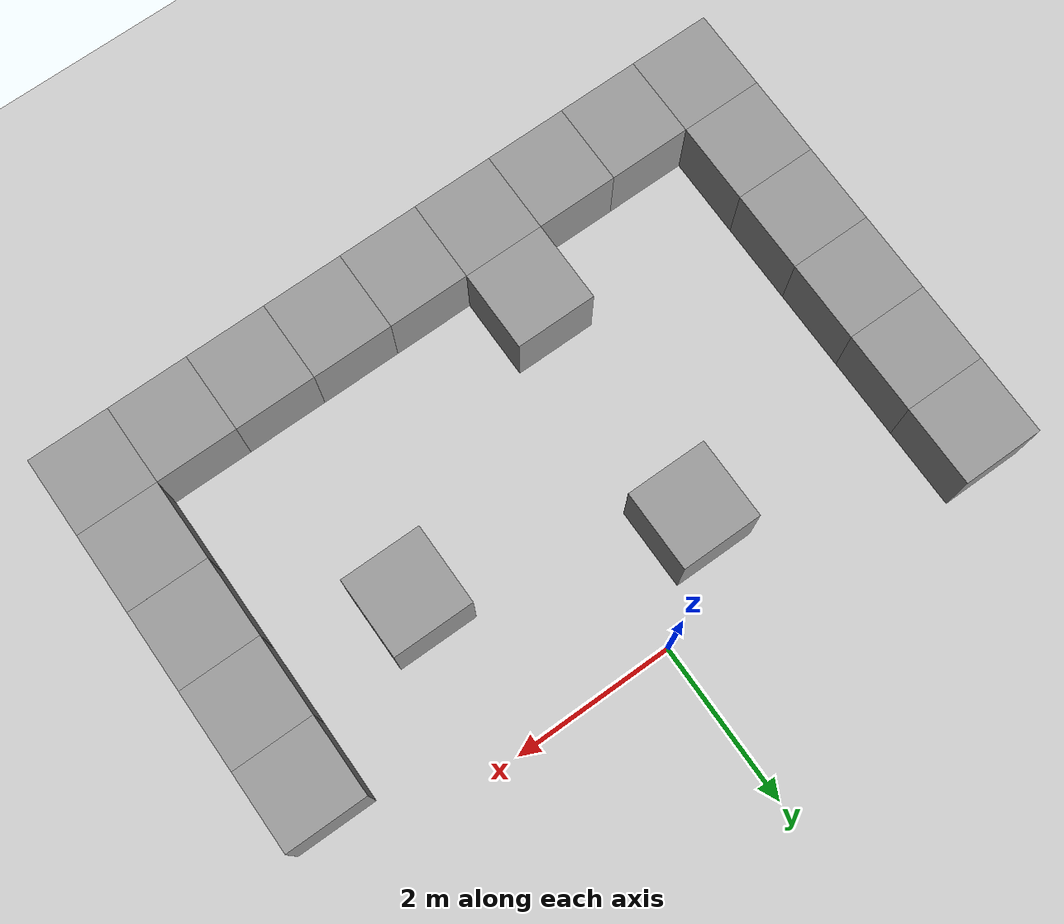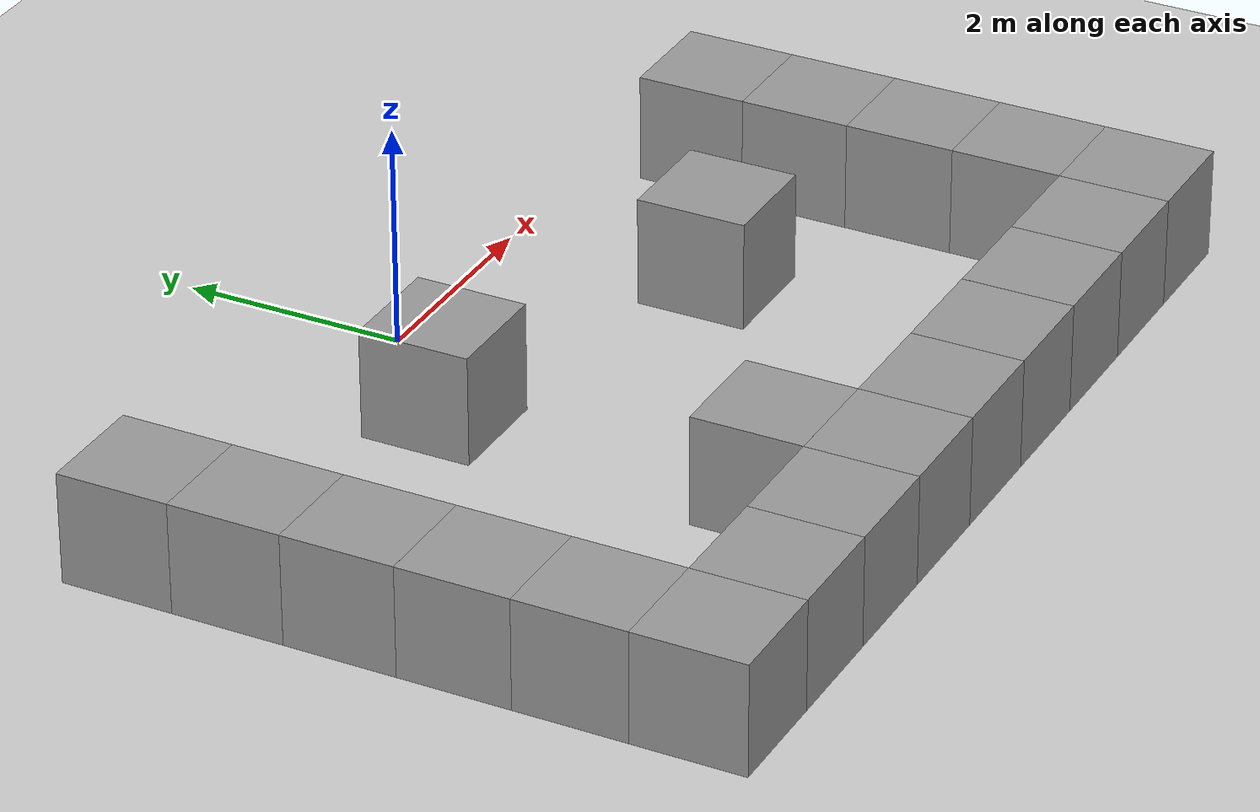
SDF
<sdf version="1.6">
 <world name="default">
  <model name="ground_plane">
   <static>1</static>
   <link name="link">
    <collision name="collision">
     <geometry><plane><normal>0 0 1</normal><size>100 100</size></plane></geometry>
     <surface>
      <contact><collide_bitmask>65535</collide_bitmask></contact>
      <friction><ode><mu>100</mu><mu2>50</mu2></ode></friction>
     </surface>
    </collision>
    <visual name="visual">
     <cast_shadows>0</cast_shadows>
     <geometry><plane><normal>0 0 1</normal><size>100 100</size></plane></geometry>
     <material>
      <script><uri>file://media/materials/scripts/gazebo.material</uri><name>Gazebo/Grey</name></script>
     </material>
    </visual>
   </link>
  </model>
  <model name="unit_box">
   <pose>-1 -0.999994 0.499995 -1e-05 -0 -0</pose>
   <link name="link">
    <inertial>
     <mass>1</mass>
     <inertia>
      <ixx>0.166667</ixx>
      <ixy>0</ixy>
      <ixz>0</ixz>
      <iyy>0.166667</iyy>
      <iyz>0</iyz>
      <izz>0.166667</izz>
     </inertia>
    </inertial>
    <collision name="collision"><geometry><box><size>1 1 1</size></box></geometry></collision>
    <visual name="visual">
     <geometry><box><size>1 1 1</size></box></geometry>
     <material>
      <script><name>Gazebo/Grey</name><uri>file://media/materials/scripts/gazebo.material</uri></script>
     </material>
    </visual>
   </link>
  </model>
  <model name="unit_box_2">
   <pose>2 -2 0.499995 0 1e-05 0</pose>
   <link name="link">
    <inertial>
     <mass>1</mass>
     <inertia>
      <ixx>0.166667</ixx>
      <ixy>0</ixy>
      <ixz>0</ixz>
      <iyy>0.166667</iyy>
      <iyz>0</iyz>
      <izz>0.166667</izz>
     </inertia>
    </inertial>
    <collision name="collision"><geometry><box><size>1 1 1</size></box></geometry></collision>
    <visual name="visual">
     <geometry><box><size>1 1 1</size></box></geometry>
     <material>
      <script><name>Gazebo/Grey</name><uri>file://media/materials/scripts/gazebo.material</uri></script>
     </material>
    </visual>
   </link>
  </model>
  <model name="unit_box_4">
   <pose>-1.00003 -4 0.499995 0 -1e-05 -2.2e-05</pose>
   <link name="link">
    <inertial>
     <mass>1</mass>
     <inertia>
      <ixx>0.166667</ixx>
      <ixy>0</ixy>
      <ixz>0</ixz>
      <iyy>0.166667</iyy>
      <iyz>0</iyz>
      <izz>0.166667</izz>
     </inertia>
    </inertial>
    <collision name="collision"><geometry><box><size>1 1 1</size></box></geometry></collision>
    <visual name="visual">
     <geometry><box><size>1 1 1</size></box></geometry>
     <material>
      <script><name>Gazebo/Grey</name><uri>file://media/materials/scripts/gazebo.material</uri></script>
     </material>
    </visual>
   </link>
  </model>
  <model name="unit_box_5">
   <pose>-4.00001 5e-06 0.499995 -1e-05 -0 -7e-06</pose>
   <link name="link">
    <inertial>
     <mass>1</mass>
     <inertia>
      <ixx>0.166667</ixx>
      <ixy>0</ixy>
      <ixz>0</ixz>
      <iyy>0.166667</iyy>
      <iyz>0</iyz>
      <izz>0.166667</izz>
     </inertia>
    </inertial>
    <collision name="collision"><geometry><box><size>1 1 1</size></box></geometry></collision>
    <visual name="visual">
     <geometry><box><size>1 1 1</size></box></geometry>
     <material>
      <script><name>Gazebo/Grey</name><uri>file://media/materials/scripts/gazebo.material</uri></script>
     </material>
    </visual>
   </link>
  </model>
  <model name="unit_box_17">
   <pose>3.99999 -2 0.5 0 -0 0</pose>
   <link name="link">
    <inertial>
     <mass>1</mass>
     <inertia>
      <ixx>0.166667</ixx>
      <ixy>0</ixy>
      <ixz>0</ixz>
      <iyy>0.166667</iyy>
      <iyz>0</iyz>
      <izz>0.166667</izz>
     </inertia>
    </inertial>
    <collision name="collision"><geometry><box><size>1 1 1</size></box></geometry></collision>
    <visual name="visual">
     <geometry><box><size>1 1 1</size></box></geometry>
     <material>
      <script><name>Gazebo/Grey</name><uri>file://media/materials/scripts/gazebo.material</uri></script>
     </material>
    </visual>
   </link>
  </model>
  <model name="unit_box_18">
   <pose>3.99999 -0.99999 0.499995 -1e-05 -0 2e-06</pose>
   <link name="link">
    <inertial>
     <mass>1</mass>
     <inertia>
      <ixx>0.166667</ixx>
      <ixy>0</ixy>
      <ixz>0</ixz>
      <iyy>0.166667</iyy>
      <iyz>0</iyz>
      <izz>0.166667</izz>
     </inertia>
    </inertial>
    <collision name="collision"><geometry><box><size>1 1 1</size></box></geometry></collision>
    <visual name="visual">
     <geometry><box><size>1 1 1</size></box></geometry>
     <material>
      <script><name>Gazebo/Grey</name><uri>file://media/materials/scripts/gazebo.material</uri></script>
     </material>
    </visual>
   </link>
  </model>
  <model name="unit_box_26">
   <pose>4.00002 -3 0.499995 0 1e-05 -1e-06</pose>
   <link name="link">
    <inertial>
     <mass>1</mass>
     <inertia>
      <ixx>0.166667</ixx>
      <ixy>0</ixy>
      <ixz>0</ixz>
      <iyy>0.166667</iyy>
      <iyz>0</iyz>
      <izz>0.166667</izz>
     </inertia>
    </inertial>
    <collision name="collision"><geometry><box><size>1 1 1</size></box></geometry></collision>
    <visual name="visual">
     <geometry><box><size>1 1 1</size></box></geometry>
     <material>
      <script><name>Gazebo/Grey</name><uri>file://media/materials/scripts/gazebo.material</uri></script>
     </material>
    </visual>
   </link>
  </model>
  <model name="unit_box_27">
   <pose>4.00001 -4.00001 0.499995 0 1e-05 -7e-06</pose>
   <link name="link">
    <inertial>
     <mass>1</mass>
     <inertia>
      <ixx>0.166667</ixx>
      <ixy>0</ixy>
      <ixz>0</ixz>
      <iyy>0.166667</iyy>
      <iyz>0</iyz>
      <izz>0.166667</izz>
     </inertia>
    </inertial>
    <collision name="collision"><geometry><box><size>1 1 1</size></box></geometry></collision>
    <visual name="visual">
     <geometry><box><size>1 1 1</size></box></geometry>
     <material>
      <script><name>Gazebo/Grey</name><uri>file://media/materials/scripts/gazebo.material</uri></script>
     </material>
    </visual>
   </link>
  </model>
  <model name="unit_box_28">
   <pose>4.00001 -5.00002 0.499995 0 1e-05 -7e-06</pose>
   <link name="link">
    <inertial>
     <mass>1</mass>
     <inertia>
      <ixx>0.166667</ixx>
      <ixy>0</ixy>
      <ixz>0</ixz>
      <iyy>0.166667</iyy>
      <iyz>0</iyz>
      <izz>0.166667</izz>
     </inertia>
    </inertial>
    <collision name="collision"><geometry><box><size>1 1 1</size></box></geometry></collision>
    <visual name="visual">
     <geometry><box><size>1 1 1</size></box></geometry>
     <material>
      <script><name>Gazebo/Grey</name><uri>file://media/materials/scripts/gazebo.material</uri></script>
     </material>
    </visual>
   </link>
  </model>
  <model name="unit_box_29">
   <pose>2.99999 -5 0.499995 -0 9e-06 -1.7e-05</pose>
   <link name="link">
    <inertial>
     <mass>1</mass>
     <inertia>
      <ixx>0.166667</ixx>
      <ixy>0</ixy>
      <ixz>0</ixz>
      <iyy>0.166667</iyy>
      <iyz>0</iyz>
      <izz>0.166667</izz>
     </inertia>
    </inertial>
    <collision name="collision"><geometry><box><size>1 1 1</size></box></geometry></collision>
    <visual name="visual">
     <geometry><box><size>1 1 1</size></box></geometry>
     <material>
      <script><name>Gazebo/Grey</name><uri>file://media/materials/scripts/gazebo.material</uri></script>
     </material>
    </visual>
   </link>
  </model>
  <model name="unit_box_30">
   <pose>1.99998 -4.99999 0.499999 0 2e-06 -1.4e-05</pose>
   <link name="link">
    <inertial>
     <mass>1</mass>
     <inertia>
      <ixx>0.166667</ixx>
      <ixy>0</ixy>
      <ixz>0</ixz>
      <iyy>0.166667</iyy>
      <iyz>0</iyz>
      <izz>0.166667</izz>
     </inertia>
    </inertial>
    <collision name="collision"><geometry><box><size>1 1 1</size></box></geometry></collision>
    <visual name="visual">
     <geometry><box><size>1 1 1</size></box></geometry>
     <material>
      <script><name>Gazebo/Grey</name><uri>file://media/materials/scripts/gazebo.material</uri></script>
     </material>
    </visual>
   </link>
  </model>
  <model name="unit_box_31">
   <pose>0.999975 -4.99996 0.5 0 0 -1.9e-05</pose>
   <link name="link">
    <inertial>
     <mass>1</mass>
     <inertia>
      <ixx>0.166667</ixx>
      <ixy>0</ixy>
      <ixz>0</ixz>
      <iyy>0.166667</iyy>
      <iyz>0</iyz>
      <izz>0.166667</izz>
     </inertia>
    </inertial>
    <collision name="collision"><geometry><box><size>1 1 1</size></box></geometry></collision>
    <visual name="visual">
     <geometry><box><size>1 1 1</size></box></geometry>
     <material>
      <script><name>Gazebo/Grey</name><uri>file://media/materials/scripts/gazebo.material</uri></script>
     </material>
    </visual>
   </link>
  </model>
  <model name="unit_box_32">
   <pose>-2.6e-05 -5.00001 0.5 -0 -0 -1.9e-05</pose>
   <link name="link">
    <inertial>
     <mass>1</mass>
     <inertia>
      <ixx>0.166667</ixx>
      <ixy>0</ixy>
      <ixz>0</ixz>
      <iyy>0.166667</iyy>
      <iyz>0</iyz>
      <izz>0.166667</izz>
     </inertia>
    </inertial>
    <collision name="collision"><geometry><box><size>1 1 1</size></box></geometry></collision>
    <visual name="visual">
     <geometry><box><size>1 1 1</size></box></geometry>
     <material>
      <script><name>Gazebo/Grey</name><uri>file://media/materials/scripts/gazebo.material</uri></script>
     </material>
    </visual>
   </link>
  </model>
  <model name="unit_box_33">
   <pose>-1.00003 -5.00004 0.499995 9e-06 -0 -2.1e-05</pose>
   <link name="link">
    <inertial>
     <mass>1</mass>
     <inertia>
      <ixx>0.166667</ixx>
      <ixy>0</ixy>
      <ixz>0</ixz>
      <iyy>0.166667</iyy>
      <iyz>0</iyz>
      <izz>0.166667</izz>
     </inertia>
    </inertial>
    <collision name="collision"><geometry><box><size>1 1 1</size></box></geometry></collision>
    <visual name="visual">
     <geometry><box><size>1 1 1</size></box></geometry>
     <material>
      <script><name>Gazebo/Grey</name><uri>file://media/materials/scripts/gazebo.material</uri></script>
     </material>
    </visual>
   </link>
  </model>
  <model name="unit_box_34">
   <pose>-2.00003 -4.99998 0.499998 1e-06 -4e-06 -2.2e-05</pose>
   <link name="link">
    <inertial>
     <mass>1</mass>
     <inertia>
      <ixx>0.166667</ixx>
      <ixy>0</ixy>
      <ixz>0</ixz>
      <iyy>0.166667</iyy>
      <iyz>0</iyz>
      <izz>0.166667</izz>
     </inertia>
    </inertial>
    <collision name="collision"><geometry><box><size>1 1 1</size></box></geometry></collision>
    <visual name="visual">
     <geometry><box><size>1 1 1</size></box></geometry>
     <material>
      <script><name>Gazebo/Grey</name><uri>file://media/materials/scripts/gazebo.material</uri></script>
     </material>
    </visual>
   </link>
  </model>
  <model name="unit_box_35">
   <pose>-3.00004 -5.00005 0.5 0 0 -6e-06</pose>
   <link name="link">
    <inertial>
     <mass>1</mass>
     <inertia>
      <ixx>0.166667</ixx>
      <ixy>0</ixy>
      <ixz>0</ixz>
      <iyy>0.166667</iyy>
      <iyz>0</iyz>
      <izz>0.166667</izz>
     </inertia>
    </inertial>
    <collision name="collision"><geometry><box><size>1 1 1</size></box></geometry></collision>
    <visual name="visual">
     <geometry><box><size>1 1 1</size></box></geometry>
     <material>
      <script><name>Gazebo/Grey</name><uri>file://media/materials/scripts/gazebo.material</uri></script>
     </material>
    </visual>
   </link>
  </model>
  <model name="unit_box_36">
   <pose>-4.00001 -1 0.499995 0 -1e-05 -1.1e-05</pose>
   <link name="link">
    <inertial>
     <mass>1</mass>
     <inertia>
      <ixx>0.166667</ixx>
      <ixy>0</ixy>
      <ixz>0</ixz>
      <iyy>0.166667</iyy>
      <iyz>0</iyz>
      <izz>0.166667</izz>
     </inertia>
    </inertial>
    <collision name="collision"><geometry><box><size>1 1 1</size></box></geometry></collision>
    <visual name="visual">
     <geometry><box><size>1 1 1</size></box></geometry>
     <material>
      <script><name>Gazebo/Grey</name><uri>file://media/materials/scripts/gazebo.material</uri></script>
     </material>
    </visual>
   </link>
  </model>
  <model name="unit_box_37">
   <pose>-4.00001 -2.00001 0.499995 0 1e-05 -1.6e-05</pose>
   <link name="link">
    <inertial>
     <mass>1</mass>
     <inertia>
      <ixx>0.166667</ixx>
      <ixy>0</ixy>
      <ixz>0</ixz>
      <iyy>0.166667</iyy>
      <iyz>0</iyz>
      <izz>0.166667</izz>
     </inertia>
    </inertial>
    <collision name="collision"><geometry><box><size>1 1 1</size></box></geometry></collision>
    <visual name="visual">
     <geometry><box><size>1 1 1</size></box></geometry>
     <material>
      <script><name>Gazebo/Grey</name><uri>file://media/materials/scripts/gazebo.material</uri></script>
     </material>
    </visual>
   </link>
  </model>
  <model name="unit_box_38">
   <pose>-4.00002 -3.00002 0.5 0 0 -6e-06</pose>
   <link name="link">
    <inertial>
     <mass>1</mass>
     <inertia>
      <ixx>0.166667</ixx>
      <ixy>0</ixy>
      <ixz>0</ixz>
      <iyy>0.166667</iyy>
      <iyz>0</iyz>
      <izz>0.166667</izz>
     </inertia>
    </inertial>
    <collision name="collision"><geometry><box><size>1 1 1</size></box></geometry></collision>
    <visual name="visual">
     <geometry><box><size>1 1 1</size></box></geometry>
     <material>
      <script><name>Gazebo/Grey</name><uri>file://media/materials/scripts/gazebo.material</uri></script>
     </material>
    </visual>
   </link>
  </model>
  <model name="unit_box_39">
   <pose>-4.00003 -4.00003 0.5 -0 -0 -3e-06</pose>
   <link name="link">
    <inertial>
     <mass>1</mass>
     <inertia>
      <ixx>0.166667</ixx>
      <ixy>0</ixy>
      <ixz>0</ixz>
      <iyy>0.166667</iyy>
      <iyz>0</iyz>
      <izz>0.166667</izz>
     </inertia>
    </inertial>
    <collision name="collision"><geometry><box><size>1 1 1</size></box></geometry></collision>
    <visual name="visual">
     <geometry><box><size>1 1 1</size></box></geometry>
     <material>
      <script><name>Gazebo/Grey</name><uri>file://media/materials/scripts/gazebo.material</uri></script>
     </material>
    </visual>
   </link>
  </model>
  <model name="unit_box_40">
   <pose>-4.00004 -5.00003 0.499998 -4e-06 -0 -5e-06</pose>
   <link name="link">
    <inertial>
     <mass>1</mass>
     <inertia>
      <ixx>0.166667</ixx>
      <ixy>0</ixy>
      <ixz>0</ixz>
      <iyy>0.166667</iyy>
      <iyz>0</iyz>
      <izz>0.166667</izz>
     </inertia>
    </inertial>
    <collision name="collision"><geometry><box><size>1 1 1</size></box></geometry></collision>
    <visual name="visual">
     <geometry><box><size>1 1 1</size></box></geometry>
     <material>
      <script><name>Gazebo/Grey</name><uri>file://media/materials/scripts/gazebo.material</uri></script>
     </material>
    </visual>
   </link>
  </model>
 </world>
</sdf>
